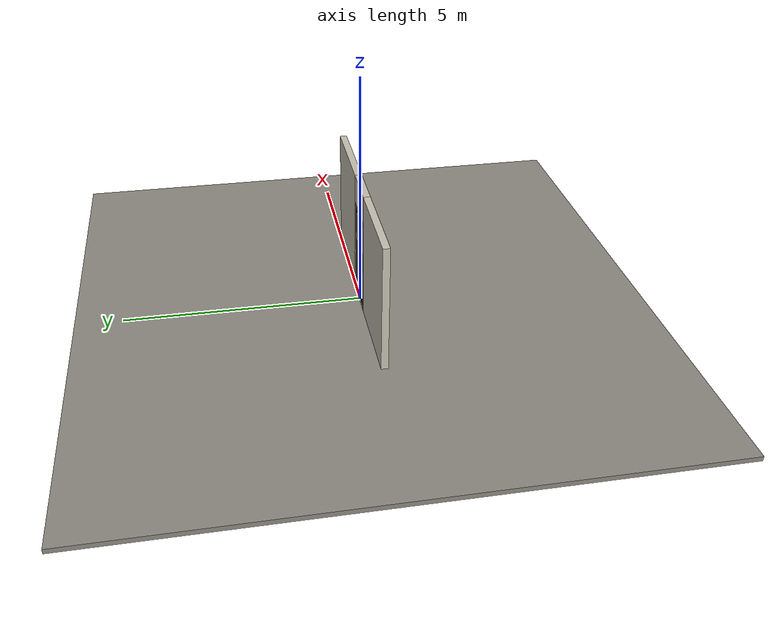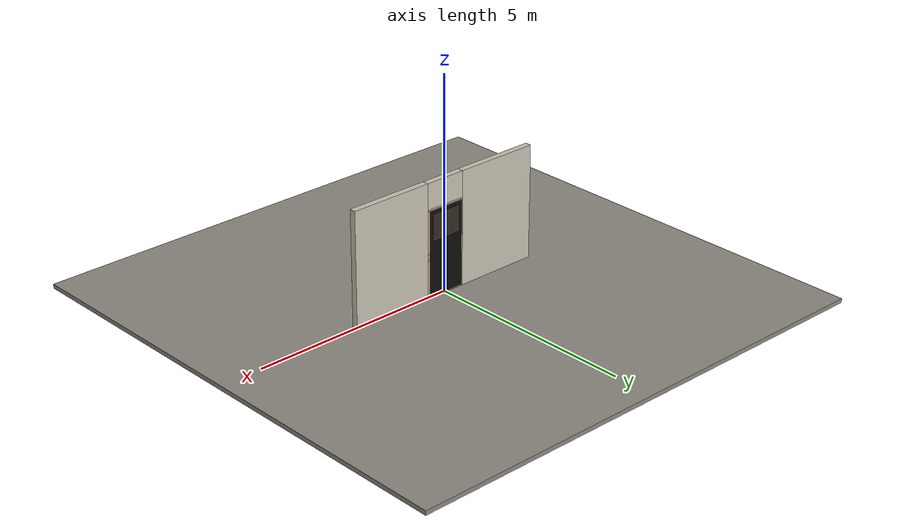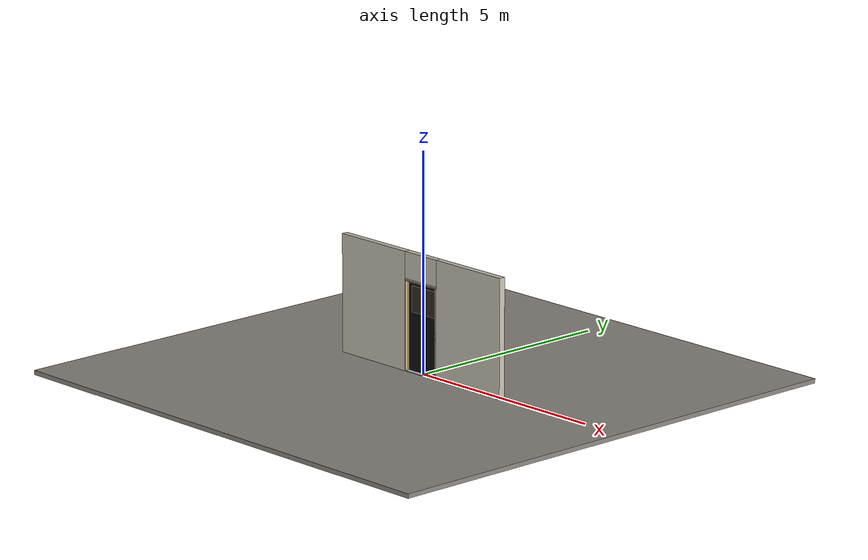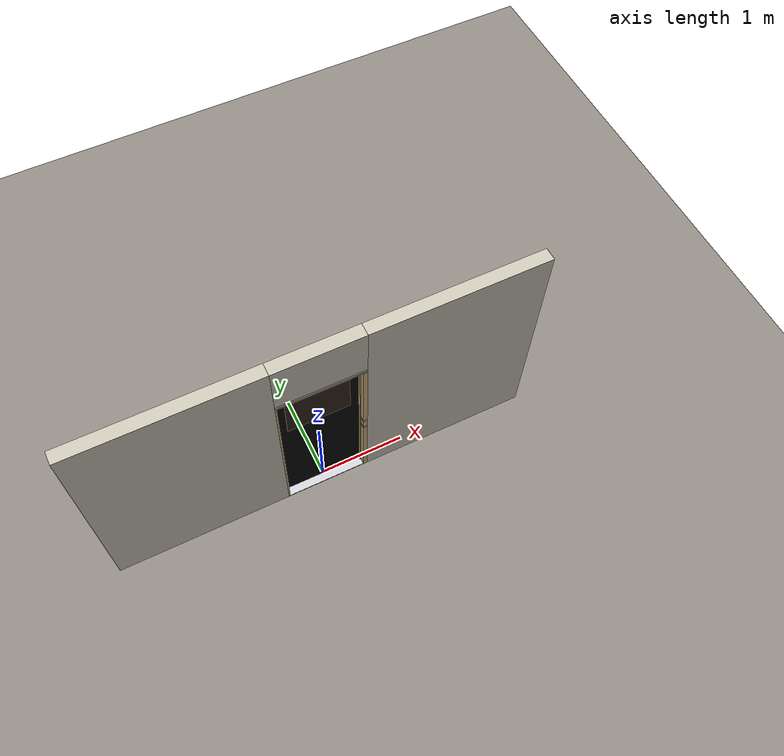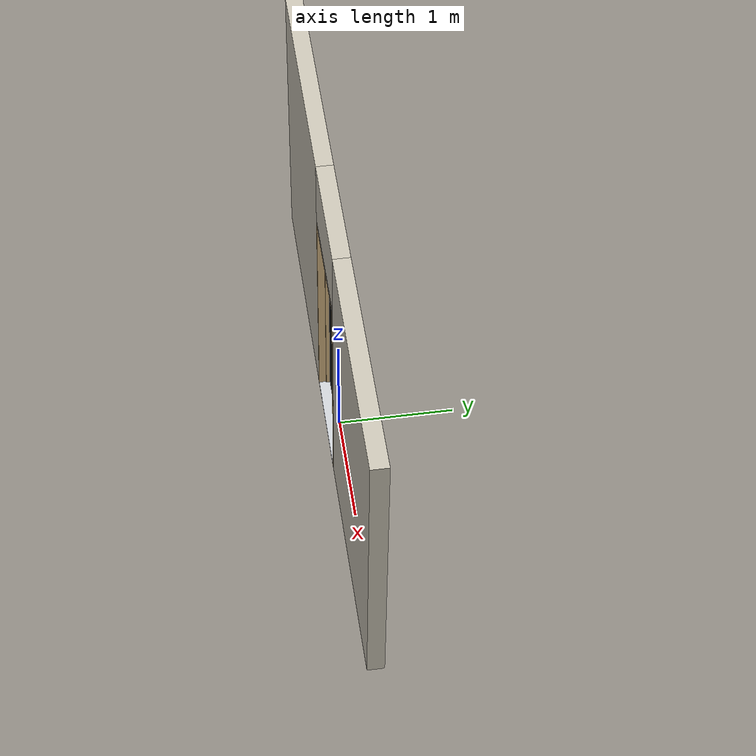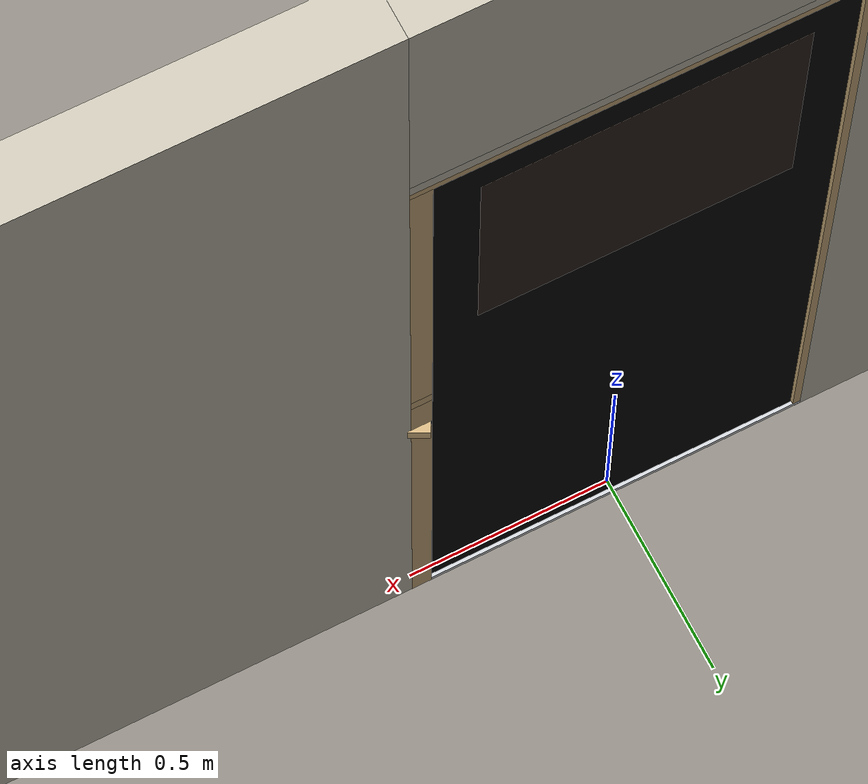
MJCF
<?xml version="1.0" ?>
<mujoco model="db0984_swing_single_minimal">
  <compiler angle="radian" meshdir="../../hardware" texturedir="../../textures" autolimits="true" inertiafromgeom="false"/>
  <option timestep="0.002" integrator="implicitfast" cone="elliptic" impratio="10" noslip_iterations="3">
    <flag multiccd="enable"/>
  </option>
  <size memory="16M"/>
  <default>
    <geom condim="4" solref="0.005 1" solimp="0.95 0.99 0.001"/>
    <joint solreflimit="0.005 1" solimplimit="0.95 0.99 0.001"/>
    <tendon solreflimit="0.005 1"/>
    <equality solref="0.002 1"/>
  </default>
  <visual>
    <headlight ambient="0.4 0.4 0.4" diffuse="0.7 0.7 0.7" specular="0.2 0.2 0.2"/>
    <quality shadowsize="4096"/>
    <map znear="0.01" zfar="60"/>
  </visual>
  <asset>
    <material name="mat_floor" rgba="0.55 0.53 0.5 1" specular="0.2" shininess="0.15" reflectance="0"/>
    <material name="mat_wall" rgba="0.78 0.76 0.7 1" specular="0.2" shininess="0.1" reflectance="0"/>
    <material name="mat_leaf" rgba="0.04 0.04 0.04 1" specular="0.23" shininess="0.62" reflectance="0.02"/>
    <material name="mat_glass" rgba="0.45 0.35 0.28 0.45" specular="0.2" shininess="0.95" reflectance="0.1"/>
    <material name="mat_hinge" rgba="0.65 0.66 0.68 1" specular="0.74" shininess="0.5" reflectance="0.36"/>
    <material name="mat_op_nickel_satin" rgba="0.72 0.7 0.66 1" specular="0.8" shininess="0.65" reflectance="0.4"/>
    <material name="mat_trim" rgba="0.85 0.66 0.3 1" specular="0.8" shininess="0.75" reflectance="0.4"/>
    <material name="mat_keypad" rgba="0.05 0.05 0.05 1" specular="0.38" shininess="0.3" reflectance="0.12"/>
    <material name="mat_key" rgba="0.85 0.85 0.82 1" specular="0.2" shininess="0.5" reflectance="0"/>
    <material name="mat_bolt" rgba="0.75 0.76 0.77 1" specular="0.8" shininess="0.65" reflectance="0.4"/>
    <material name="mat_deadbolt" rgba="0.85 0.66 0.3 1" specular="0.8" shininess="0.75" reflectance="0.4"/>
    <material name="mat_frame" rgba="0.82 0.7 0.5 1" specular="0.2" shininess="0.45" reflectance="0"/>
    <material name="mat_threshold" rgba="0.8 0.81 0.83 1" specular="0.8" shininess="0.6" reflectance="0.4"/>
    <material name="mat_numbers" rgba="0.05 0.05 0.05 1" specular="0.38" shininess="0.3" reflectance="0.12"/>
    <material name="mat_drip" rgba="0.8 0.81 0.83 1" specular="0.8" shininess="0.6" reflectance="0.4"/>
    <texture name="skybox" type="skybox" builtin="gradient" rgb1="0.6 0.7 0.85" rgb2="0.9 0.92 0.95" width="256" height="256"/>
  </asset>
  <worldbody>
    <light name="sun" pos="1.5 -2.5 4" dir="-0.3 0.5 -0.8" directional="true" diffuse="0.8 0.8 0.8" specular="0.3 0.3 0.3" castshadow="true"/>
    <light name="fill" pos="-1.5 2.5 3" dir="0.3 -0.5 -0.7" directional="true" diffuse="0.35 0.35 0.4" castshadow="false"/>
    <camera name="robot_view" pos="0 -2.585687 1.734312" xyaxes="1 0 0 0 0.26963 0.962964" fovy="52"/>
    <camera name="far_view" pos="0 2.498687 1.734312" xyaxes="-1 0 0 0 -0.26963 0.962964" fovy="52"/>
    <camera name="iso" pos="1.932062 -2.178937 2.141063" xyaxes="0.741536 0.670913 0 -0.242917 0.268487 0.932151" fovy="46"/>
    <camera name="detail_handle" pos="0.5335 -0.8435 1.194" xyaxes="0.97561 0.219512 0 -0.070934 0.315262 0.94635" fovy="38"/>
    <geom name="floor" type="box" size="6 6 0.05" pos="0 0 -0.05" material="mat_floor" group="0" contype="1" conaffinity="1" friction="0.8 0.005 0.0001" density="2400"/>
    <geom name="wall_left" type="box" size="1.01025 0.0725 1.35" pos="-1.48975 -0.0435 1.35" material="mat_wall" group="0" contype="1" conaffinity="1" friction="0.6 0.005 0.0001" density="800"/>
    <geom name="wall_right" type="box" size="0.99525 0.0725 1.35" pos="1.50475 -0.0435 1.35" material="mat_wall" group="0" contype="1" conaffinity="1" friction="0.6 0.005 0.0001" density="800"/>
    <geom name="wall_header" type="box" size="0.4945 0.0725 0.303" pos="0.015 -0.0435 2.397" material="mat_wall" group="0" contype="1" conaffinity="1" friction="0.6 0.005 0.0001" density="800"/>
    <geom name="jamb_hinge" type="box" size="0.0095 0.0725 1.0225" pos="-0.47 -0.0435 1.0225" material="mat_frame" group="0" contype="1" conaffinity="1" friction="0.6 0.005 0.0001" density="400"/>
    <geom name="strike_914_wall_n" type="box" size="0.0245 0.05475 0.015" pos="0.485 -0.06125 0.914" material="mat_frame" group="0" contype="1" conaffinity="1" friction="0.6 0.005 0.0001" density="400"/>
    <geom name="strike_914_wall_p" type="box" size="0.0245 0.008 0.015" pos="0.485 0.0145 0.914" material="mat_frame" group="0" contype="1" conaffinity="1" friction="0.6 0.005 0.0001" density="400"/>
    <geom name="strike_914_ramp" type="box" size="0.0245 0.016771 0.015" pos="0.489913 0.026543 0.914" quat="0.973249 0 0 -0.229753" material="mat_frame" group="0" contype="1" conaffinity="1" friction="0.12 0.005 0.0001" density="400"/>
    <geom name="strike_914_back" type="box" size="0.0155 0.0065 0.015" pos="0.494 0 0.914" material="mat_frame" group="0" contype="1" conaffinity="1" friction="0.6 0.005 0.0001" density="400"/>
    <geom name="strike_1054_wall_n" type="box" size="0.0245 0.05325 0.0155" pos="0.485 -0.06275 1.054" material="mat_frame" group="0" contype="1" conaffinity="1" friction="0.6 0.005 0.0001" density="400"/>
    <geom name="strike_1054_wall_p" type="box" size="0.0245 0.00975 0.0155" pos="0.485 0.01925 1.054" material="mat_frame" group="0" contype="1" conaffinity="1" friction="0.6 0.005 0.0001" density="400"/>
    <geom name="strike_1054_back" type="box" size="0.0098 0.0095 0.0155" pos="0.4997 0 1.054" material="mat_frame" group="0" contype="1" conaffinity="1" friction="0.6 0.005 0.0001" density="400"/>
    <geom name="jamb_strike_0" type="box" size="0.0245 0.0725 0.4495" pos="0.485 -0.0435 0.4495" material="mat_frame" group="0" contype="1" conaffinity="1" friction="0.6 0.005 0.0001" density="400"/>
    <geom name="jamb_strike_1" type="box" size="0.0245 0.0725 0.05475" pos="0.485 -0.0435 0.98375" material="mat_frame" group="0" contype="1" conaffinity="1" friction="0.6 0.005 0.0001" density="400"/>
    <geom name="jamb_strike_2" type="box" size="0.0245 0.0725 0.48775" pos="0.485 -0.0435 1.55725" material="mat_frame" group="0" contype="1" conaffinity="1" friction="0.6 0.005 0.0001" density="400"/>
    <geom name="jamb_head" type="box" size="0.4945 0.0725 0.0095" pos="0.015 -0.0435 2.0545" material="mat_frame" group="0" contype="1" conaffinity="1" friction="0.6 0.005 0.0001" density="400"/>
    <geom name="head_stud" type="box" size="0.4945 0.0725 0.015" pos="0.015 -0.0435 2.079" material="mat_wall" group="0" contype="1" conaffinity="1" friction="0.6 0.005 0.0001" density="500"/>
    <geom name="stop_hinge" type="box" size="0.0055 0.016 1.0225" pos="-0.455 -0.0385 1.0225" material="mat_frame" group="0" contype="1" conaffinity="1" friction="0.6 0.005 0.0001" density="400"/>
    <geom name="stop_strike" type="box" size="0.0055 0.016 1.0225" pos="0.455 -0.0385 1.0225" material="mat_frame" group="0" contype="1" conaffinity="1" friction="0.6 0.005 0.0001" density="400"/>
    <geom name="stop_head" type="box" size="0.4605 0.016 0.0055" pos="0 -0.0385 2.0395" material="mat_frame" group="0" contype="1" conaffinity="1" friction="0.6 0.005 0.0001" density="400"/>
    <geom name="threshold" type="box" size="0.4795 0.0725 0.0065" pos="0 -0.0435 0.0065" material="mat_threshold" group="0" contype="1" conaffinity="1" friction="0.5 0.005 0.0001" density="2700"/>
    <site name="approach_point" pos="0 -1.5 0" quat="1 0 0 0" size="0.05" rgba="0.2 0.9 0.2 0.5" group="4"/>
    <site name="goal_point" pos="0 1.5 0" quat="1 0 0 0" size="0.05" rgba="0.2 0.9 0.2 0.5" group="4"/>
    <site name="door_plane_center" pos="0 0 1.0225" quat="1 0 0 0" size="0.02" rgba="0.2 0.9 0.2 0.5" group="4"/>
    <body name="leaf" pos="-0.4605 0 0">
      <inertial pos="0.46 0 1.029631" mass="28.623146" quat="-0.5 0.5 0.5 0.5" diaginertia="1.996454467 9.77790486 11.765122889"/>
      <joint name="leaf_hinge" type="hinge" axis="0 0 1" pos="0.003 0.029 0" limited="true" range="0 1.570796" damping="0.30611" frictionloss="0.952761" armature="0.02"/>
      <geom name="leaf_slab" type="box" size="0.457 0.022 1.012" pos="0.46 0 1.029" material="mat_leaf" group="0" contype="1" conaffinity="1" friction="0.4 0.005 0.0001" density="1"/>
      <geom name="leaf_glass_0" type="box" size="0.35646 0.0228 0.297528" pos="0.46 0 1.642272" material="mat_glass" group="1" contype="0" conaffinity="0" density="1"/>
      <site name="leaf_edge_mid" pos="0.917 0 1.012" quat="1 0 0 0" size="0.02" rgba="0.2 0.9 0.2 0.5" group="4"/>
      <body name="leaf_handle" pos="0.862 0 0.914">
        <inertial pos="0 0 0" mass="0.01" quat="1 0 0 0" diaginertia="0.000001 0.000001 0.000001"/>
        <joint name="leaf_handle_hinge" type="hinge" axis="0 -1 0" limited="true" range="0 0.87" damping="0.141426" frictionloss="0.048" stiffness="0.5" springref="-0.5" armature="0.01"/>
      </body>
      <body name="leaf_latch_bolt" pos="0.917 0 0.914">
        <inertial pos="-0.008 0 0" mass="0.027149" quat="0 0 0.707107 0.707107" diaginertia="0.000000328 0.000003943 0.000003943"/>
        <joint name="leaf_latch_bolt_slide" type="slide" axis="-1 0 0" limited="true" range="0 0.014" damping="2" frictionloss="0.3" stiffness="400" springref="-0.01" armature="0.1"/>
        <geom name="leaf_latch_bolt_capsule" type="capsule" size="0.005 0.017" pos="-0.008 0 0" quat="0.707107 0 0.707107 0" material="mat_bolt" group="0" contype="1" conaffinity="1" friction="0.2 0.005 0.0001" density="8500"/>
      </body>
    </body>
  </worldbody>
  <tendon>
    <fixed name="leaf_latch_bolt_coupling" limited="true" range="0 10">
      <joint joint="leaf_latch_bolt_slide" coef="1"/>
      <joint joint="leaf_handle_hinge" coef="-0.017284"/>
    </fixed>
  </tendon>
  <sensor>
    <jointpos name="leaf_hinge_pos" joint="leaf_hinge"/>
    <jointvel name="leaf_hinge_vel" joint="leaf_hinge"/>
    <jointpos name="leaf_handle_hinge_pos" joint="leaf_handle_hinge"/>
    <jointvel name="leaf_handle_hinge_vel" joint="leaf_handle_hinge"/>
    <jointpos name="leaf_latch_bolt_slide_pos" joint="leaf_latch_bolt_slide"/>
    <jointvel name="leaf_latch_bolt_slide_vel" joint="leaf_latch_bolt_slide"/>
  </sensor>
</mujoco>
